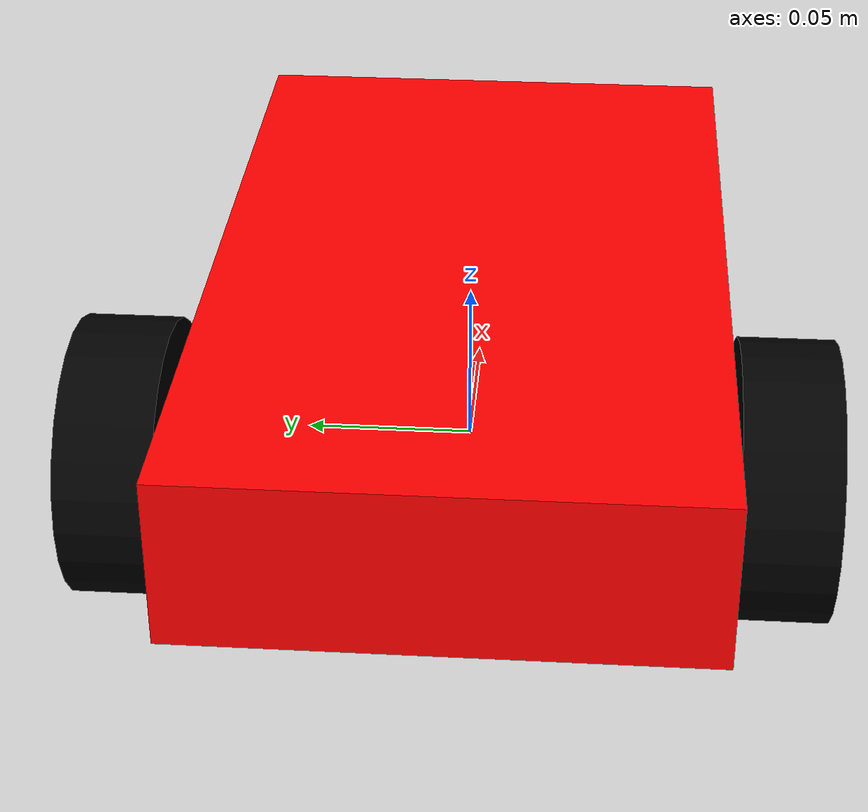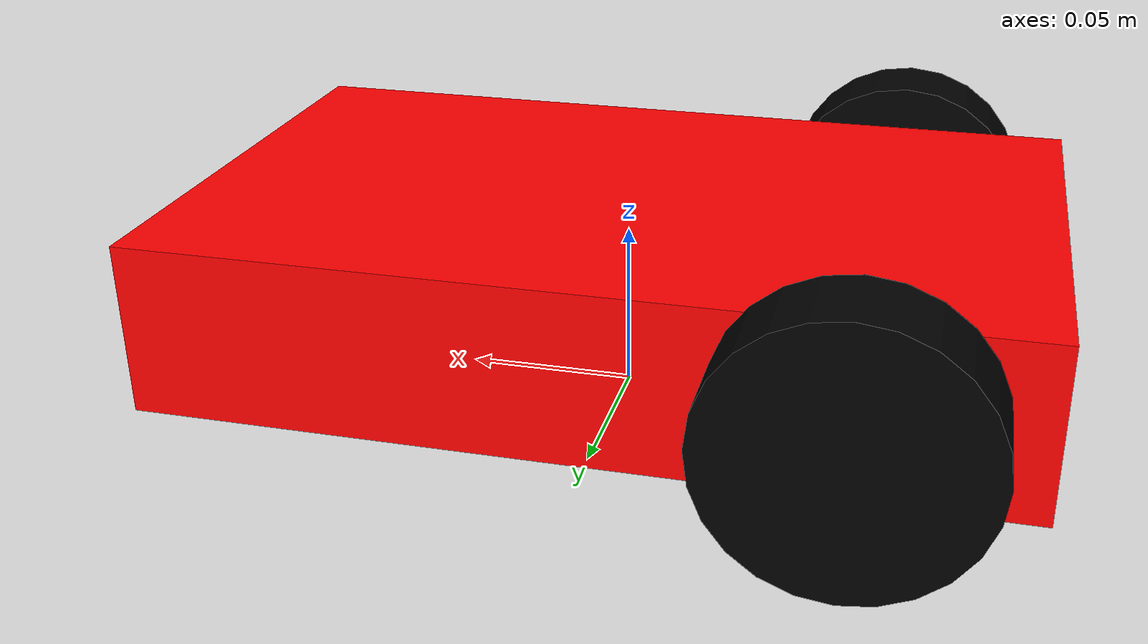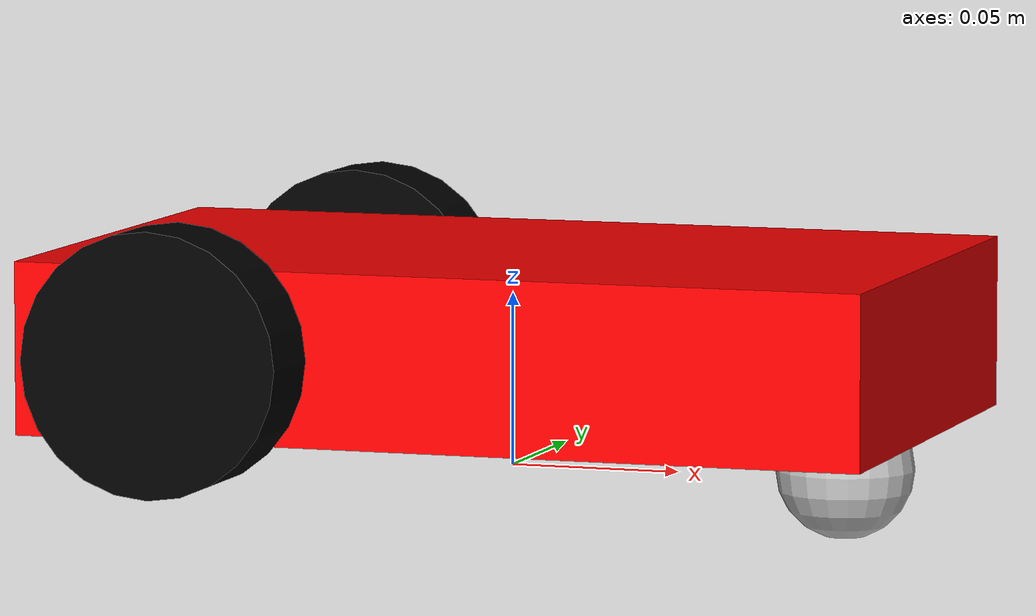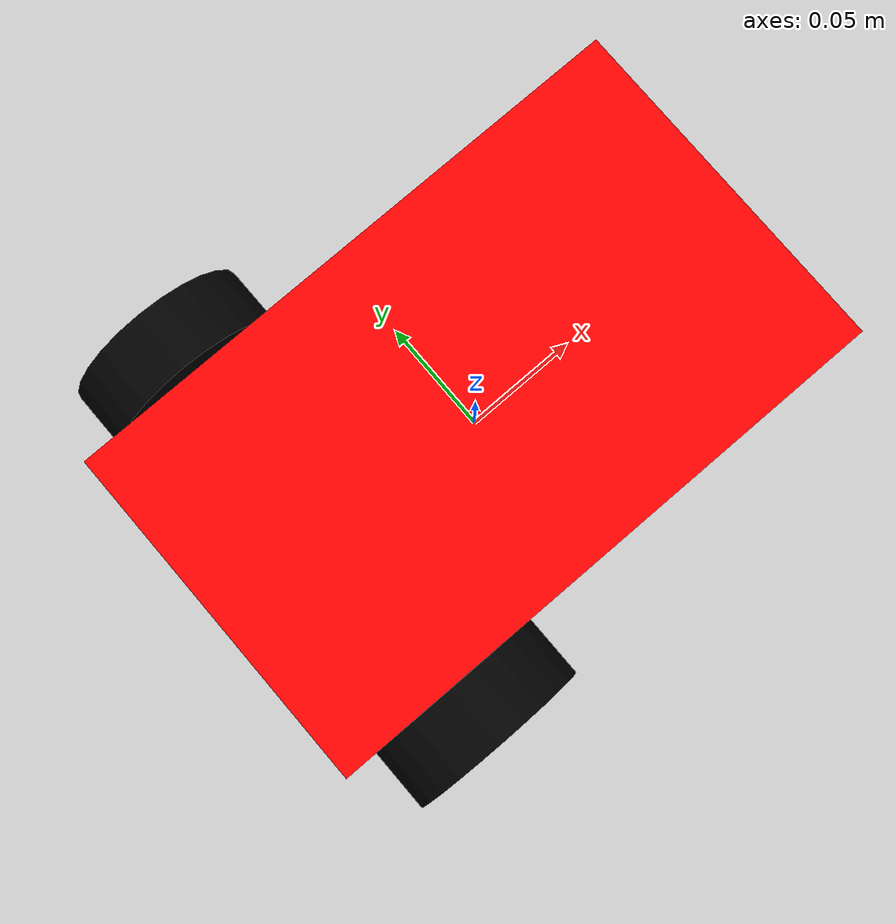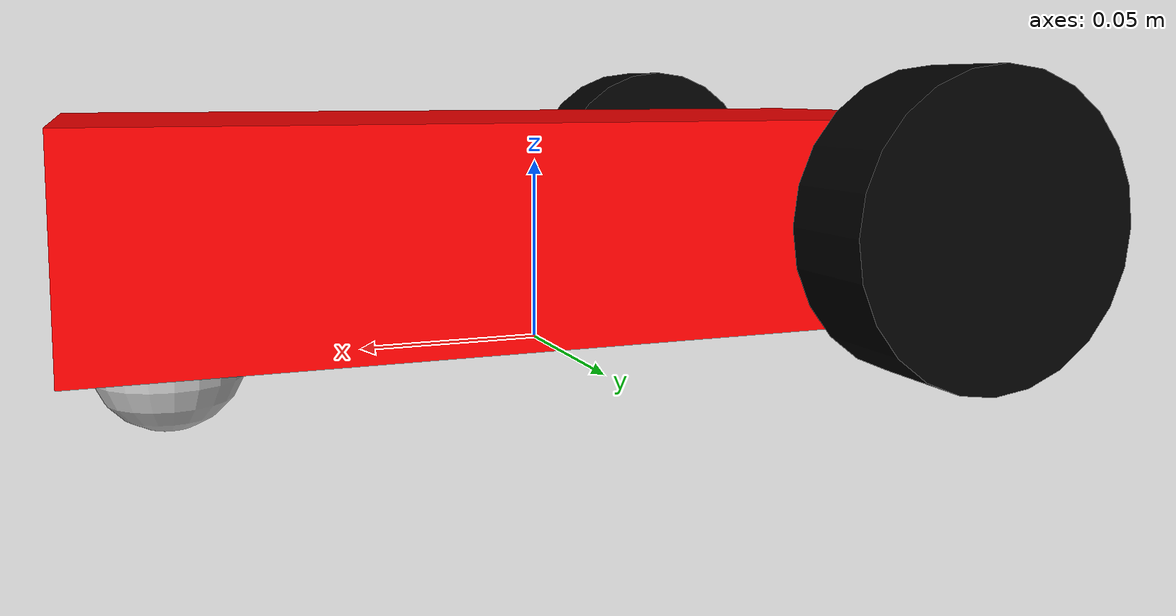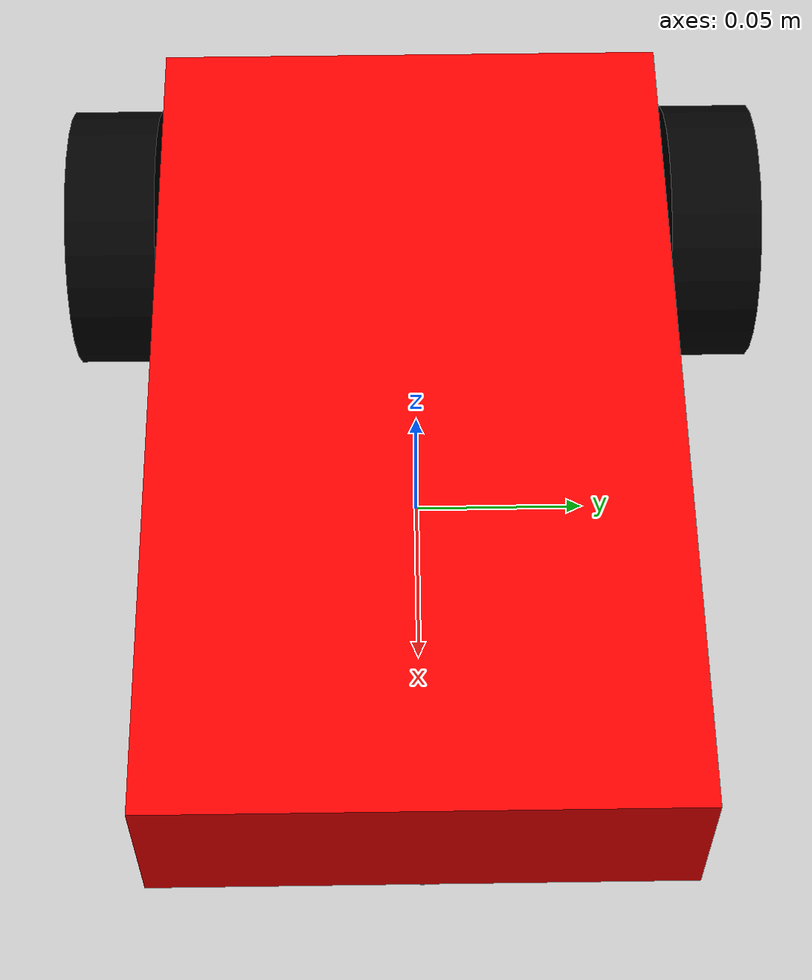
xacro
<?xml version="1.0"?>
<robot name="my_robot" xmlns:xacro="http://www.ros.org/wiki/xacro">
    <xacro:include filename="materials.xacro" />
    <xacro:include filename="inertials.xacro" />

    <xacro:include filename="my_robot_core.xacro" />
    <xacro:include filename="gz_plugins.xacro" />
    <xacro:include filename="my_robot.ros2_control.xacro" />
</robot>

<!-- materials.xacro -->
<robot xmlns:xacro="http://www.ros.org/wiki/xacro">
    <material name="red">
        <color rgba="1 0 0 1.0" />
    </material>

    <material name="green">
        <color rgba="0 1 0 1.0" />
    </material>

    <material name="blue">
        <color rgba="0 0 1 1.0" />
    </material>

    <material name="black">
        <color rgba="0 0 0 1" />
    </material>

    <material name="white">
        <color rgba="1 1 1 1" />
    </material>

    <material name="grey">
        <color rgba="0.5 0.5 0.5 1" />
    </material>

    <material name="dark_grey">
        <color rgba="0.2 0.2 0.2 1" />
    </material>

    <material name="light_grey">
        <color rgba="0.8 0.8 0.8 1" />
    </material>

    <material name="yellow">
        <color rgba="1 1 0 1" />
    </material>

    <material name="orange">
        <color rgba="1 0.5 0 1" />
    </material>

    <material name="purple">
        <color rgba="0.6 0 0.8 1" />
    </material>

    <material name="pink">
        <color rgba="1 0.4 0.7 1" />
    </material>

    <material name="cyan">
        <color rgba="0 1 1 1" />
    </material>

    <material name="brown">
        <color rgba="0.4 0.2 0 1" />
    </material>

    <material name="dark_red">
        <color rgba="0.5 0 0 1" />
    </material>

    <material name="dark_green">
        <color rgba="0 0.4 0 1" />
    </material>

    <material name="dark_blue">
        <color rgba="0 0 0.5 1" />
    </material>

    <material name="gold">
        <color rgba="1 0.84 0 1" />
    </material>

    <material name="silver">
        <color rgba="0.75 0.75 0.75 1" />
    </material>

    <material name="lime">
        <color rgba="0.6 1 0 1" />
    </material>

    <material name="teal">
        <color rgba="0 0.5 0.5 1" />
    </material>

    <material name="magenta">
        <color rgba="1 0 1 1" />
    </material>

    <material name="indigo">
        <color rgba="0.29 0 0.51 1" />
    </material>

    <material name="violet">
        <color rgba="0.56 0 1 1" />
    </material>

    <material name="coral">
        <color rgba="1 0.38 0.28 1" />
    </material>

    <material name="salmon">
        <color rgba="0.98 0.5 0.45 1" />
    </material>

    <material name="crimson">
        <color rgba="0.86 0.08 0.24 1" />
    </material>

    <material name="maroon">
        <color rgba="0.5 0 0.25 1" />
    </material>

    <material name="olive">
        <color rgba="0.5 0.5 0 1" />
    </material>

    <material name="dark_olive">
        <color rgba="0.33 0.42 0.18 1" />
    </material>

    <material name="forest_green">
        <color rgba="0.13 0.55 0.13 1" />
    </material>

    <material name="mint">
        <color rgba="0.6 1 0.8 1" />
    </material>

    <material name="turquoise">
        <color rgba="0.25 0.88 0.82 1" />
    </material>

    <material name="sky_blue">
        <color rgba="0.53 0.81 0.98 1" />
    </material>

    <material name="navy">
        <color rgba="0 0 0.5 1" />
    </material>

    <material name="royal_blue">
        <color rgba="0.25 0.41 0.88 1" />
    </material>

    <material name="steel_blue">
        <color rgba="0.27 0.51 0.71 1" />
    </material>

    <material name="powder_blue">
        <color rgba="0.69 0.88 0.9 1" />
    </material>

    <material name="lavender">
        <color rgba="0.71 0.49 0.86 1" />
    </material>

    <material name="plum">
        <color rgba="0.56 0.27 0.52 1" />
    </material>

    <material name="hot_pink">
        <color rgba="1 0.08 0.58 1" />
    </material>

    <material name="deep_pink">
        <color rgba="1 0 0.5 1" />
    </material>

    <material name="peach">
        <color rgba="1 0.8 0.64 1" />
    </material>

    <material name="beige">
        <color rgba="0.96 0.96 0.86 1" />
    </material>

    <material name="ivory">
        <color rgba="1 1 0.94 1" />
    </material>

    <material name="cream">
        <color rgba="1 0.99 0.82 1" />
    </material>

    <material name="tan">
        <color rgba="0.82 0.71 0.55 1" />
    </material>

    <material name="sand">
        <color rgba="0.93 0.84 0.69 1" />
    </material>

    <material name="khaki">
        <color rgba="0.76 0.69 0.57 1" />
    </material>

    <material name="sienna">
        <color rgba="0.53 0.18 0.09 1" />
    </material>

    <material name="chocolate">
        <color rgba="0.48 0.25 0.01 1" />
    </material>

    <material name="saddle_brown">
        <color rgba="0.55 0.27 0.07 1" />
    </material>

    <material name="rust">
        <color rgba="0.72 0.25 0.05 1" />
    </material>

    <material name="burnt_orange">
        <color rgba="0.8 0.33 0.0 1" />
    </material>

    <material name="amber">
        <color rgba="1 0.75 0 1" />
    </material>

    <material name="yellow_green">
        <color rgba="0.6 0.8 0.2 1" />
    </material>

    <material name="chartreuse">
        <color rgba="0.5 1 0 1" />
    </material>

    <material name="neon_green">
        <color rgba="0.22 1 0.08 1" />
    </material>

    <material name="neon_blue">
        <color rgba="0.12 0.56 1 1" />
    </material>

    <material name="neon_pink">
        <color rgba="1 0.1 0.7 1" />
    </material>

    <material name="neon_yellow">
        <color rgba="0.9 1 0 1" />
    </material>

    <material name="neon_orange">
        <color rgba="1 0.4 0 1" />
    </material>

    <material name="bronze">
        <color rgba="0.8 0.5 0.2 1" />
    </material>

    <material name="copper">
        <color rgba="0.72 0.45 0.2 1" />
    </material>

    <material name="rose_gold">
        <color rgba="0.9 0.6 0.55 1" />
    </material>

    <material name="off_white">
        <color rgba="0.94 0.94 0.94 1" />
    </material>

    <material name="charcoal">
        <color rgba="0.21 0.27 0.31 1" />
    </material>

    <material name="slate">
        <color rgba="0.44 0.5 0.56 1" />
    </material>

    <material name="midnight_blue">
        <color rgba="0.1 0.1 0.44 1" />
    </material>

    <material name="ocean_blue">
        <color rgba="0 0.47 0.75 1" />
    </material>

    <material name="ice_blue">
        <color rgba="0.78 0.93 1 1" />
    </material>

</robot>

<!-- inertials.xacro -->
<robot xmlns:xacro="http://www.ros.org/wiki/xacro">

    <xacro:macro name="box_inertial" params="lx ly lz m o_xyz o_rpy">
        <inertial>
            <origin xyz="${o_xyz}" rpy="${o_rpy}" />
            <mass value="${m}" />
            <inertia ixx="${1/12 * m * (ly**2 + lz**2)}" ixy="0.0" ixz="0.0" iyy="${1/12 * m * (lx**2 + lz**2)}" iyz="0.0" izz="${1/12 * m * (ly**2 + lx**2)}" />
        </inertial>
    </xacro:macro>

    <xacro:macro name="cylinder_inertial" params="r l m o_xyz o_rpy">
        <inertial>
            <origin xyz="${o_xyz}" rpy="${o_rpy}"/>
            <mass value="${m}"/>
            <inertia ixx="${1/12 * m * (3 * r**2 + l**2)}" ixy="0.0" ixz="0.0" iyy="${1/12 * m * (3 * r**2 + l**2)}" iyz="0.0" izz="${1/2 * m * r**2}"/>
        </inertial>
    </xacro:macro>

    <xacro:macro name="sphere_inertial" params="r m o_xyz o_rpy">
        <inertial>
            <origin xyz="${o_xyz}" rpy="${o_rpy}"/>
            <mass value="${m}"/>
            <inertia ixx="${2/5 * m * r**2}" ixy="0.0" ixz="0.0" iyy="${2/5 * m * r**2}" iyz="0.0" izz="${2/5 * m * r**2}"/>
        </inertial>

    </xacro:macro>

</robot>

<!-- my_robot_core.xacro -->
<robot xmlns:xacro="http://www.ros.org/wiki/xacro">

    <xacro:property name="base_lx" value="0.25" />
    <xacro:property name="base_ly" value="0.15" />
    <xacro:property name="base_lz" value="0.05" />
    <xacro:property name="base_mass" value="0.25" />

    <xacro:property name="wheel_rad" value="0.038" />
    <xacro:property name="wheel_len" value="0.026" />
    <xacro:property name="wheel_mass" value="0.032" />
    <xacro:property name="base_wheel_offset_x" value="${base_lx * 0.3}" />
    <xacro:property name="base_wheel_offset_z" value="0" />

    <xacro:property name="caster_rad" value="0.02" />
    <xacro:property name="caster_mass" value="0.07" />
    <xacro:property name="base_caster_offset_x" value="${base_lx * 0.4}" />
    <xacro:property name="base_caster_offset_z" value="${-base_lz * 0.5}" />

    <!-- Base -->

    <link name="base_footprint" />

    <link name="base_link">
        <visual>
            <origin xyz="0 0 0" rpy="0 0 0" />
            <geometry>
                <box size="${base_lx} ${base_ly} ${base_lz}" />
            </geometry>
            <material name="red" />
        </visual>
        <collision>
            <origin xyz="0 0 0" rpy="0 0 0" />
            <geometry>
                <box size="${base_lx} ${base_ly} ${base_lz}" />
            </geometry>
        </collision>
        <xacro:box_inertial lx="${base_lx}" ly="${base_ly}" lz="${base_lz}" m="${base_mass}"
            o_xyz="0.0 0.0 0.0" o_rpy="0 0 0" />
    </link>

    <joint name="footprint_base_joint" type="fixed">
        <origin xyz="0 0 ${wheel_rad - base_wheel_offset_z}" rpy="0 0 0" />
        <parent link="base_footprint" />
        <child link="base_link" />
    </joint>

    <!-- Wheels -->

    <link name="left_wheel_link">

        <visual>
            <origin xyz="0.0 0.0 0.0" rpy="${pi/2} 0.0 0.0" />
            <geometry>
                <cylinder radius="${wheel_rad}" length="${wheel_len}" />
            </geometry>
            <material name="black" />
        </visual>

        <collision>
            <origin xyz="0.0 0.0 0.0" rpy="${pi/2} 0.0 0.0" />
            <geometry>
                <cylinder radius="${wheel_rad}" length="${wheel_len}" />
            </geometry>
        </collision>

        <xacro:cylinder_inertial r="${wheel_rad}" l="${wheel_len}" m="${wheel_mass}" o_xyz="0.0 0.0 0.0"
            o_rpy="${pi/2} 0.0 0.0" />

    </link>

    <joint name="base_left_wheel_joint" type="continuous">
        <origin xyz="-${base_wheel_offset_x} ${-(base_ly + wheel_len) / 2} ${base_wheel_offset_z}"
            rpy="0 0 0" />
        <parent link="base_link" />
        <child link="left_wheel_link" />
        <axis xyz="0 1 0" />
    </joint>

    <link name="right_wheel_link">

        <visual>
            <origin xyz="0.0 0.0 0.0" rpy="${pi/2} 0.0 0.0" />
            <geometry>
                <cylinder radius="${wheel_rad}" length="${wheel_len}" />
            </geometry>
            <material name="black" />
        </visual>

        <collision>
            <origin xyz="0.0 0.0 0.0" rpy="${pi/2} 0.0 0.0" />
            <geometry>
                <cylinder radius="${wheel_rad}" length="${wheel_len}" />
            </geometry>
        </collision>

        <xacro:cylinder_inertial r="${wheel_rad}" l="${wheel_len}" m="${wheel_mass}" o_xyz="0.0 0.0 0.0"
            o_rpy="${pi/2} 0.0 0.0" />
    </link>

    <joint name="base_right_wheel_joint" type="continuous">
        <origin xyz="-${base_wheel_offset_x} ${(base_ly + wheel_len) / 2} ${base_wheel_offset_z}"
            rpy="0 0 0" />
        <parent link="base_link" />
        <child link="right_wheel_link" />
        <axis xyz="0 1 0" />
    </joint>

    <!-- Caster -->
    <link name="caster_link">

        <visual>
            <origin xyz="0 0 ${-caster_rad / 2}" rpy="0 0 0" />
            <geometry>
                <sphere radius="${caster_rad}" />
            </geometry>
            <material name="silver" />
        </visual>

        <collision>
            <origin xyz="0 0 ${-caster_rad / 2}" rpy="0 0 0" />
            <geometry>
                <sphere radius="${caster_rad}" />
            </geometry>
        </collision>

        <xacro:sphere_inertial r="${caster_rad}" m="${caster_mass}" o_xyz="0 0 ${-caster_rad / 2}" o_rpy="0 0 0" />

    </link>

    <joint name="base_caster_joint" type="fixed">
        <origin xyz="${base_caster_offset_x} 0 ${base_caster_offset_z}" rpy="0 0 0" />
        <parent link="base_link" />
        <child link="caster_link" />
    </joint>

</robot>
